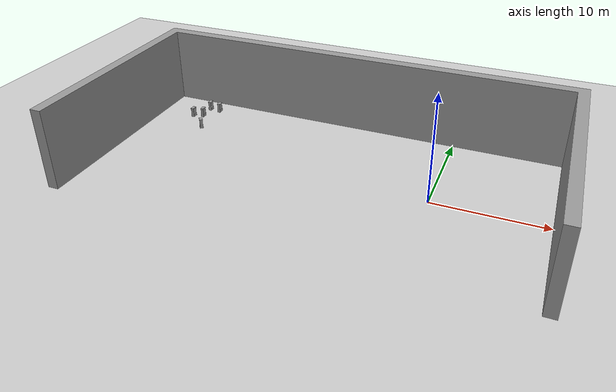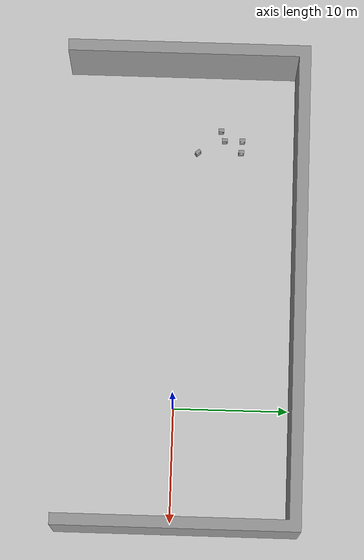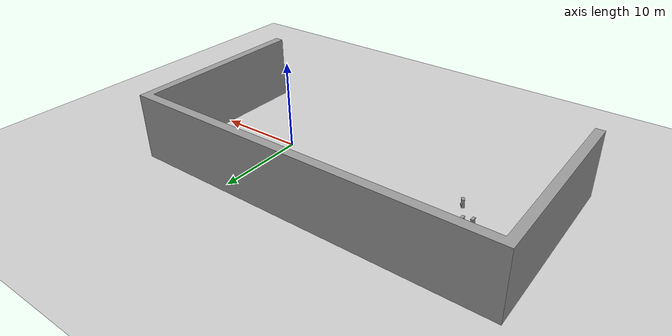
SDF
<sdf version="1.6">
 <world name="default">
  <light name="sun" type="directional">
   <pose>0 0 10 0 -0 0</pose>
   <diffuse>0.8 0.8 0.8 1</diffuse>
   <specular>0.2 0.2 0.2 1</specular>
   <attenuation>
    <range>1000</range>
    <constant>0.9</constant>
    <linear>0.01</linear>
    <quadratic>0.001</quadratic>
   </attenuation>
   <direction>-0.5 0.1 -0.9</direction>
  </light>
  <model name="ground_plane">
   <static>1</static>
   <link name="link">
    <collision name="collision">
     <geometry><plane><normal>0 0 1</normal><size>100 100</size></plane></geometry>
     <surface>
      <contact><collide_bitmask>65535</collide_bitmask></contact>
      <friction><ode><mu>100</mu><mu2>50</mu2></ode></friction>
     </surface>
    </collision>
    <visual name="visual">
     <cast_shadows>0</cast_shadows>
     <geometry><plane><normal>0 0 1</normal><size>100 100</size></plane></geometry>
     <material>
      <script><uri>file://media/materials/scripts/gazebo.material</uri><name>Gazebo/Grey</name></script>
     </material>
    </visual>
   </link>
  </model>
  <gravity>0 0 -9.8</gravity>
  <magnetic_field>6e-06 2.3e-05 -4.2e-05</magnetic_field>
  <atmosphere type="adiabatic"/>
  <physics name="default_physics" default="0" type="ode">
   <max_step_size>0.001</max_step_size>
   <real_time_factor>1</real_time_factor>
   <real_time_update_rate>1000</real_time_update_rate>
  </physics>
  <scene><ambient>0.4 0.4 0.4 1</ambient><background>0.7 0.7 0.7 1</background><shadows>1</shadows></scene>
  <spherical_coordinates>
   <surface_model>EARTH_WGS84</surface_model>
   <latitude_deg>0</latitude_deg>
   <longitude_deg>0</longitude_deg>
   <elevation>0</elevation>
   <heading_deg>0</heading_deg>
  </spherical_coordinates>
  <model name="final_wall">
   <link name="link_0">
    <inertial>
     <mass>1</mass>
     <inertia>
      <ixx>0.166667</ixx>
      <ixy>0</ixy>
      <ixz>0</ixz>
      <iyy>0.166667</iyy>
      <iyz>0</iyz>
      <izz>0.166667</izz>
     </inertia>
    </inertial>
    <pose>-1e-05 0 0 0 -0 0</pose>
    <visual name="visual">
     <geometry><mesh><uri>/home/aditya/Downloads/wall.stl</uri><scale>1 1 1</scale></mesh></geometry>
     <material>
      <lighting>1</lighting>
      <script><uri>file://media/materials/scripts/gazebo.material</uri><name>Gazebo/Grey</name></script>
      <shader type="pixel"/>
     </material>
    </visual>
    <collision name="collision">
     <geometry><mesh><uri>/home/aditya/Downloads/wall.stl</uri><scale>1 1 1</scale></mesh></geometry>
     <surface>
      <friction>
       <ode><mu>1</mu><mu2>1</mu2><fdir1>0 0 0</fdir1><slip1>0</slip1><slip2>0</slip2></ode>
       <torsional>
        <coefficient>1</coefficient>
        <patch_radius>0</patch_radius>
        <surface_radius>0</surface_radius>
        <use_patch_radius>1</use_patch_radius>
        <ode><slip>0</slip></ode>
       </torsional>
      </friction>
      <bounce><restitution_coefficient>0</restitution_coefficient><threshold>1e+06</threshold></bounce>
      <contact>
       <collide_without_contact>0</collide_without_contact>
       <collide_without_contact_bitmask>1</collide_without_contact_bitmask>
       <collide_bitmask>1</collide_bitmask>
       <ode>
        <soft_cfm>0</soft_cfm>
        <soft_erp>0.2</soft_erp>
        <kp>1e+13</kp>
        <kd>1</kd>
        <max_vel>0.01</max_vel>
        <min_depth>0</min_depth>
       </ode>
       <bullet>
        <split_impulse>1</split_impulse>
        <split_impulse_penetration_threshold>-0.01</split_impulse_penetration_threshold>
        <soft_cfm>0</soft_cfm>
        <soft_erp>0.2</soft_erp>
        <kp>1e+13</kp>
        <kd>1</kd>
       </bullet>
      </contact>
     </surface>
    </collision>
   </link>
   <static>0</static>
   <pose>-9.99856 0.027931 -0.000599 0 3e-05 2e-06</pose>
  </model>
  <model name="final_light_object_0_clone_0">
   <link name="link_0">
    <inertial>
     <mass>0.1</mass>
     <inertia>
      <ixx>0.166667</ixx>
      <ixy>0</ixy>
      <ixz>0</ixz>
      <iyy>0.166667</iyy>
      <iyz>0</iyz>
      <izz>0.166667</izz>
     </inertia>
    </inertial>
    <visual name="visual">
     <geometry><mesh><uri>/home/aditya/Downloads/object.stl</uri><scale>1 1 1</scale></mesh></geometry>
     <material>
      <lighting>1</lighting>
      <script><uri>file://media/materials/scripts/gazebo.material</uri><name>Gazebo/Grey</name></script>
      <shader type="pixel"><normal_map>__default__</normal_map></shader>
      <ambient>0.3 0.3 0.3 1</ambient>
      <diffuse>0.7 0.7 0.7 1</diffuse>
      <specular>0.01 0.01 0.01 1</specular>
      <emissive>0 0 0 1</emissive>
     </material>
    </visual>
    <collision name="collision">
     <geometry><mesh><uri>/home/aditya/Downloads/object.stl</uri><scale>1 1 1</scale></mesh></geometry>
     <surface>
      <friction>
       <ode><mu>1</mu><mu2>1</mu2><fdir1>0 0 0</fdir1><slip1>0</slip1><slip2>0</slip2></ode>
       <torsional>
        <coefficient>1</coefficient>
        <patch_radius>0</patch_radius>
        <surface_radius>0</surface_radius>
        <use_patch_radius>1</use_patch_radius>
        <ode><slip>0</slip></ode>
       </torsional>
      </friction>
      <bounce><restitution_coefficient>0</restitution_coefficient><threshold>1e+06</threshold></bounce>
      <contact>
       <collide_without_contact>0</collide_without_contact>
       <collide_without_contact_bitmask>1</collide_without_contact_bitmask>
       <collide_bitmask>1</collide_bitmask>
       <ode>
        <soft_cfm>0</soft_cfm>
        <soft_erp>0.2</soft_erp>
        <kp>1e+13</kp>
        <kd>1</kd>
        <max_vel>0.01</max_vel>
        <min_depth>0</min_depth>
       </ode>
       <bullet>
        <split_impulse>1</split_impulse>
        <split_impulse_penetration_threshold>-0.01</split_impulse_penetration_threshold>
        <soft_cfm>0</soft_cfm>
        <soft_erp>0.2</soft_erp>
        <kp>1e+13</kp>
        <kd>1</kd>
       </bullet>
      </contact>
     </surface>
    </collision>
   </link>
   <static>0</static>
   <pose>-24.517 3.50865 1.7377 0 0 -1.61285</pose>
  </model>
  <model name="final_light_object">
   <link name="link_0">
    <inertial>
     <mass>0.1</mass>
     <inertia>
      <ixx>0.166667</ixx>
      <ixy>0</ixy>
      <ixz>0</ixz>
      <iyy>0.166667</iyy>
      <iyz>0</iyz>
      <izz>0.166667</izz>
     </inertia>
    </inertial>
    <visual name="visual">
     <geometry><mesh><uri>/home/aditya/Downloads/object.stl</uri><scale>1 1 1</scale></mesh></geometry>
     <material>
      <lighting>1</lighting>
      <script><uri>file://media/materials/scripts/gazebo.material</uri><name>Gazebo/Grey</name></script>
      <shader type="pixel"><normal_map>__default__</normal_map></shader>
      <ambient>0.3 0.3 0.3 1</ambient>
      <diffuse>0.7 0.7 0.7 1</diffuse>
      <specular>0.01 0.01 0.01 1</specular>
      <emissive>0 0 0 1</emissive>
     </material>
    </visual>
    <collision name="collision">
     <geometry><mesh><uri>/home/aditya/Downloads/object.stl</uri><scale>1 1 1</scale></mesh></geometry>
     <surface>
      <friction>
       <ode><mu>1</mu><mu2>1</mu2><fdir1>0 0 0</fdir1><slip1>0</slip1><slip2>0</slip2></ode>
       <torsional>
        <coefficient>1</coefficient>
        <patch_radius>0</patch_radius>
        <surface_radius>0</surface_radius>
        <use_patch_radius>1</use_patch_radius>
        <ode><slip>0</slip></ode>
       </torsional>
      </friction>
      <bounce><restitution_coefficient>0</restitution_coefficient><threshold>1e+06</threshold></bounce>
      <contact>
       <collide_without_contact>0</collide_without_contact>
       <collide_without_contact_bitmask>1</collide_without_contact_bitmask>
       <collide_bitmask>1</collide_bitmask>
       <ode>
        <soft_cfm>0</soft_cfm>
        <soft_erp>0.2</soft_erp>
        <kp>1e+13</kp>
        <kd>1</kd>
        <max_vel>0.01</max_vel>
        <min_depth>0</min_depth>
       </ode>
       <bullet>
        <split_impulse>1</split_impulse>
        <split_impulse_penetration_threshold>-0.01</split_impulse_penetration_threshold>
        <soft_cfm>0</soft_cfm>
        <soft_erp>0.2</soft_erp>
        <kp>1e+13</kp>
        <kd>1</kd>
       </bullet>
      </contact>
     </surface>
    </collision>
   </link>
   <static>0</static>
   <pose>-22.4696 1.50365 1.85624 0 0 -0.884293</pose>
  </model>
  <model name="final_object">
   <link name="link_2">
    <inertial>
     <mass>1</mass>
     <inertia>
      <ixx>0.166667</ixx>
      <ixy>0</ixy>
      <ixz>0</ixz>
      <iyy>0.166667</iyy>
      <iyz>0</iyz>
      <izz>0.166667</izz>
     </inertia>
    </inertial>
    <pose>-3e-06 -1.1e-05 0 0 -0 0</pose>
    <visual name="visual">
     <geometry><mesh><uri>/home/aditya/Downloads/object.stl</uri><scale>1 1 1</scale></mesh></geometry>
     <material>
      <lighting>1</lighting>
      <script><uri>file://media/materials/scripts/gazebo.material</uri><name>Gazebo/Grey</name></script>
      <shader type="pixel"/>
     </material>
    </visual>
    <collision name="collision">
     <geometry><mesh><uri>/home/aditya/Downloads/object.stl</uri><scale>1 1 1</scale></mesh></geometry>
     <surface>
      <friction>
       <ode><mu>1</mu><mu2>1</mu2><fdir1>0 0 0</fdir1><slip1>0</slip1><slip2>0</slip2></ode>
       <torsional>
        <coefficient>1</coefficient>
        <patch_radius>0</patch_radius>
        <surface_radius>0</surface_radius>
        <use_patch_radius>1</use_patch_radius>
        <ode><slip>0</slip></ode>
       </torsional>
      </friction>
      <bounce><restitution_coefficient>0</restitution_coefficient><threshold>1e+06</threshold></bounce>
      <contact>
       <collide_without_contact>0</collide_without_contact>
       <collide_without_contact_bitmask>1</collide_without_contact_bitmask>
       <collide_bitmask>1</collide_bitmask>
       <ode>
        <soft_cfm>0</soft_cfm>
        <soft_erp>0.2</soft_erp>
        <kp>1e+13</kp>
        <kd>1</kd>
        <max_vel>0.01</max_vel>
        <min_depth>0</min_depth>
       </ode>
       <bullet>
        <split_impulse>1</split_impulse>
        <split_impulse_penetration_threshold>-0.01</split_impulse_penetration_threshold>
        <soft_cfm>0</soft_cfm>
        <soft_erp>0.2</soft_erp>
        <kp>1e+13</kp>
        <kd>1</kd>
       </bullet>
      </contact>
     </surface>
    </collision>
   </link>
   <static>0</static>
   <pose>-22.6237 5.31248 1.72046 0 0 -1.55615</pose>
  </model>
  <model name="final_object_clone">
   <link name="link_2">
    <inertial>
     <mass>1</mass>
     <inertia>
      <ixx>0.166667</ixx>
      <ixy>0</ixy>
      <ixz>0</ixz>
      <iyy>0.166667</iyy>
      <iyz>0</iyz>
      <izz>0.166667</izz>
     </inertia>
    </inertial>
    <pose>-3e-06 -1.1e-05 0 0 -0 0</pose>
    <visual name="visual">
     <geometry><mesh><uri>/home/aditya/Downloads/object.stl</uri><scale>1 1 1</scale></mesh></geometry>
     <material>
      <lighting>1</lighting>
      <script><uri>file://media/materials/scripts/gazebo.material</uri><name>Gazebo/Grey</name></script>
      <shader type="pixel"/>
     </material>
    </visual>
    <collision name="collision">
     <geometry><mesh><uri>/home/aditya/Downloads/object.stl</uri><scale>1 1 1</scale></mesh></geometry>
     <surface>
      <friction>
       <ode><mu>1</mu><mu2>1</mu2><fdir1>0 0 0</fdir1><slip1>0</slip1><slip2>0</slip2></ode>
       <torsional>
        <coefficient>1</coefficient>
        <patch_radius>0</patch_radius>
        <surface_radius>0</surface_radius>
        <use_patch_radius>1</use_patch_radius>
        <ode><slip>0</slip></ode>
       </torsional>
      </friction>
      <bounce><restitution_coefficient>0</restitution_coefficient><threshold>1e+06</threshold></bounce>
      <contact>
       <collide_without_contact>0</collide_without_contact>
       <collide_without_contact_bitmask>1</collide_without_contact_bitmask>
       <collide_bitmask>1</collide_bitmask>
       <ode>
        <soft_cfm>0</soft_cfm>
        <soft_erp>0.2</soft_erp>
        <kp>1e+13</kp>
        <kd>1</kd>
        <max_vel>0.01</max_vel>
        <min_depth>0</min_depth>
       </ode>
       <bullet>
        <split_impulse>1</split_impulse>
        <split_impulse_penetration_threshold>-0.01</split_impulse_penetration_threshold>
        <soft_cfm>0</soft_cfm>
        <soft_erp>0.2</soft_erp>
        <kp>1e+13</kp>
        <kd>1</kd>
       </bullet>
      </contact>
     </surface>
    </collision>
   </link>
   <static>0</static>
   <pose>-23.6698 5.38133 1.72046 0 0 -1.55615</pose>
  </model>
  <model name="final_object_clone_0">
   <link name="link_2">
    <inertial>
     <mass>1</mass>
     <inertia>
      <ixx>0.166667</ixx>
      <ixy>0</ixy>
      <ixz>0</ixz>
      <iyy>0.166667</iyy>
      <iyz>0</iyz>
      <izz>0.166667</izz>
     </inertia>
    </inertial>
    <pose>-3e-06 -1.1e-05 0 0 -0 0</pose>
    <visual name="visual">
     <geometry><mesh><uri>/home/aditya/Downloads/object.stl</uri><scale>1 1 1</scale></mesh></geometry>
     <material>
      <lighting>1</lighting>
      <script><uri>file://media/materials/scripts/gazebo.material</uri><name>Gazebo/Grey</name></script>
      <shader type="pixel"/>
     </material>
    </visual>
    <collision name="collision">
     <geometry><mesh><uri>/home/aditya/Downloads/object.stl</uri><scale>1 1 1</scale></mesh></geometry>
     <surface>
      <friction>
       <ode><mu>1</mu><mu2>1</mu2><fdir1>0 0 0</fdir1><slip1>0</slip1><slip2>0</slip2></ode>
       <torsional>
        <coefficient>1</coefficient>
        <patch_radius>0</patch_radius>
        <surface_radius>0</surface_radius>
        <use_patch_radius>1</use_patch_radius>
        <ode><slip>0</slip></ode>
       </torsional>
      </friction>
      <bounce><restitution_coefficient>0</restitution_coefficient><threshold>1e+06</threshold></bounce>
      <contact>
       <collide_without_contact>0</collide_without_contact>
       <collide_without_contact_bitmask>1</collide_without_contact_bitmask>
       <collide_bitmask>1</collide_bitmask>
       <ode>
        <soft_cfm>0</soft_cfm>
        <soft_erp>0.2</soft_erp>
        <kp>1e+13</kp>
        <kd>1</kd>
        <max_vel>0.01</max_vel>
        <min_depth>0</min_depth>
       </ode>
       <bullet>
        <split_impulse>1</split_impulse>
        <split_impulse_penetration_threshold>-0.01</split_impulse_penetration_threshold>
        <soft_cfm>0</soft_cfm>
        <soft_erp>0.2</soft_erp>
        <kp>1e+13</kp>
        <kd>1</kd>
       </bullet>
      </contact>
     </surface>
    </collision>
   </link>
   <static>0</static>
   <pose>-23.6396 3.83675 1.72046 0 0 -1.55615</pose>
  </model>
 </world>
</sdf>
